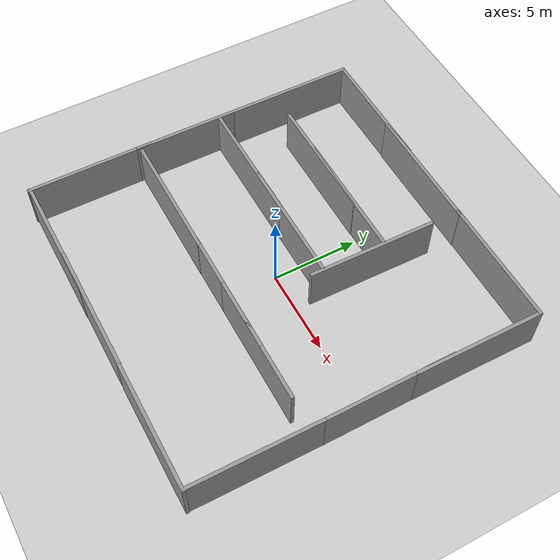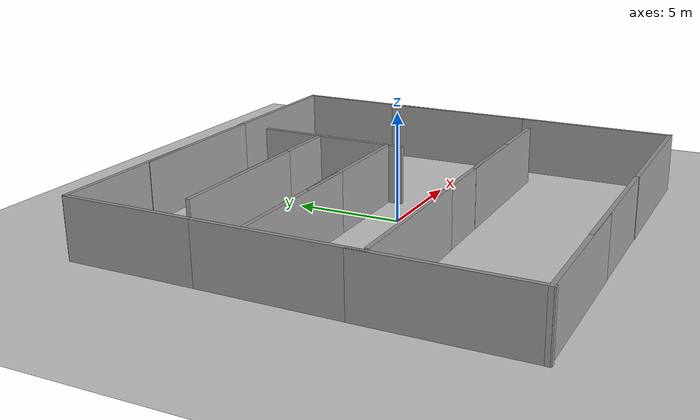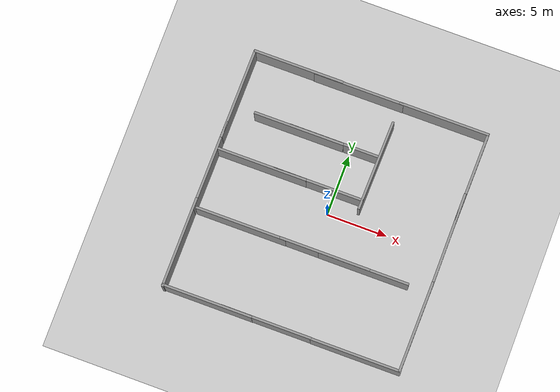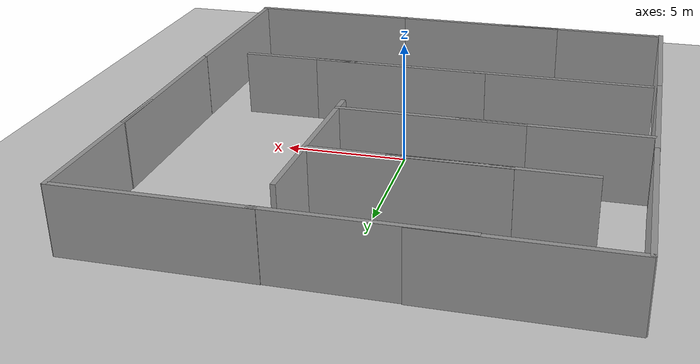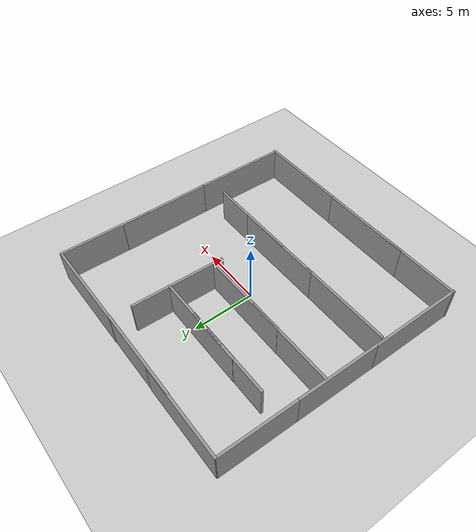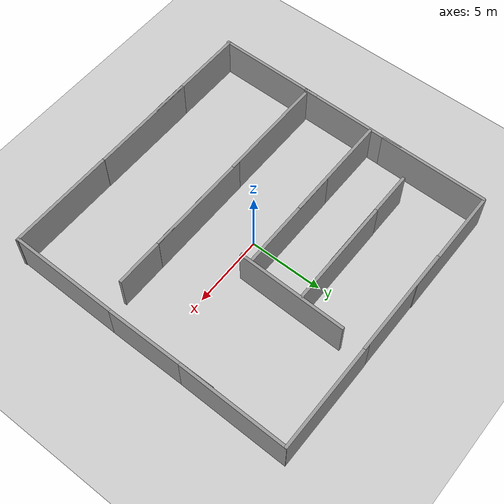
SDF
<sdf version="1.6">
 <world name="default">
  <light name="sun" type="directional">
   <pose>0 0 10 0 -0 0</pose>
   <diffuse>0.8 0.8 0.8 1</diffuse>
   <specular>0.2 0.2 0.2 1</specular>
   <attenuation>
    <range>1000</range>
    <constant>0.9</constant>
    <linear>0.01</linear>
    <quadratic>0.001</quadratic>
   </attenuation>
   <direction>-0.5 0.1 -0.9</direction>
  </light>
  <model name="ground_plane">
   <static>1</static>
   <link name="link">
    <collision name="collision">
     <geometry><plane><normal>0 0 1</normal><size>100 100</size></plane></geometry>
     <surface>
      <contact><collide_bitmask>65535</collide_bitmask></contact>
      <friction><ode><mu>100</mu><mu2>50</mu2></ode></friction>
     </surface>
    </collision>
    <visual name="visual">
     <cast_shadows>0</cast_shadows>
     <geometry><plane><normal>0 0 1</normal><size>100 100</size></plane></geometry>
     <material>
      <script><uri>file://media/materials/scripts/gazebo.material</uri><name>Gazebo/Grey</name></script>
     </material>
    </visual>
   </link>
  </model>
  <gravity>0 0 -9.8</gravity>
  <magnetic_field>6e-06 2.3e-05 -4.2e-05</magnetic_field>
  <atmosphere type="adiabatic"/>
  <physics name="default_physics" default="0" type="ode">
   <max_step_size>0.001</max_step_size>
   <real_time_factor>1</real_time_factor>
   <real_time_update_rate>1000</real_time_update_rate>
  </physics>
  <scene><ambient>0.4 0.4 0.4 1</ambient><background>0.7 0.7 0.7 1</background><shadows>1</shadows></scene>
  <spherical_coordinates>
   <surface_model>EARTH_WGS84</surface_model>
   <latitude_deg>0</latitude_deg>
   <longitude_deg>0</longitude_deg>
   <elevation>0</elevation>
   <heading_deg>0</heading_deg>
  </spherical_coordinates>
  <model name="grey_wall">
   <static>1</static>
   <link name="link">
    <pose>0 0 1.4 0 -0 0</pose>
    <collision name="collision"><geometry><box><size>7.5 0.2 2.8</size></box></geometry></collision>
    <visual name="visual">
     <cast_shadows>0</cast_shadows>
     <geometry><box><size>7.5 0.2 2.8</size></box></geometry>
     <material>
      <script>
       <uri>model://grey_wall/materials/scripts</uri>
       <uri>model://grey_wall/materials/textures</uri>
       <name>vrc/grey_wall</name>
      </script>
     </material>
    </visual>
   </link>
   <pose>6.02196 -10.0229 0 0 -0 0</pose>
  </model>
  <model name="grey_wall_0">
   <static>1</static>
   <link name="link">
    <pose>0 0 1.4 0 -0 0</pose>
    <collision name="collision"><geometry><box><size>7.5 0.2 2.8</size></box></geometry></collision>
    <visual name="visual">
     <cast_shadows>0</cast_shadows>
     <geometry><box><size>7.5 0.2 2.8</size></box></geometry>
     <material>
      <script>
       <uri>model://grey_wall/materials/scripts</uri>
       <uri>model://grey_wall/materials/textures</uri>
       <name>vrc/grey_wall</name>
      </script>
     </material>
    </visual>
   </link>
   <pose>-1.41071 -10.0047 0 0 -0 0</pose>
  </model>
  <model name="grey_wall_1">
   <static>1</static>
   <link name="link">
    <pose>0 0 1.4 0 -0 0</pose>
    <collision name="collision"><geometry><box><size>7.5 0.2 2.8</size></box></geometry></collision>
    <visual name="visual">
     <cast_shadows>0</cast_shadows>
     <geometry><box><size>7.5 0.2 2.8</size></box></geometry>
     <material>
      <script>
       <uri>model://grey_wall/materials/scripts</uri>
       <uri>model://grey_wall/materials/textures</uri>
       <name>vrc/grey_wall</name>
      </script>
     </material>
    </visual>
   </link>
   <pose>-6.33108 -10.0193 0 0 -0 0</pose>
  </model>
  <model name="grey_wall_clone">
   <static>1</static>
   <link name="link">
    <pose>0 0 1.4 0 -0 0</pose>
    <collision name="collision"><geometry><box><size>7.5 0.2 2.8</size></box></geometry></collision>
    <visual name="visual">
     <cast_shadows>0</cast_shadows>
     <geometry><box><size>7.5 0.2 2.8</size></box></geometry>
     <material>
      <script>
       <uri>model://grey_wall/materials/scripts</uri>
       <uri>model://grey_wall/materials/textures</uri>
       <name>vrc/grey_wall</name>
      </script>
     </material>
    </visual>
   </link>
   <pose>9.67688 -6.30598 0 0 0 -1.58292</pose>
  </model>
  <model name="grey_wall_2">
   <static>1</static>
   <link name="link">
    <pose>0 0 1.4 0 -0 0</pose>
    <collision name="collision"><geometry><box><size>7.5 0.2 2.8</size></box></geometry></collision>
    <visual name="visual">
     <cast_shadows>0</cast_shadows>
     <geometry><box><size>7.5 0.2 2.8</size></box></geometry>
     <material>
      <script>
       <uri>model://grey_wall/materials/scripts</uri>
       <uri>model://grey_wall/materials/textures</uri>
       <name>vrc/grey_wall</name>
      </script>
     </material>
    </visual>
   </link>
   <pose>9.73015 1.12334 0 0 -0 1.57</pose>
  </model>
  <model name="grey_wall_3">
   <static>1</static>
   <link name="link">
    <pose>0 0 1.4 0 -0 0</pose>
    <collision name="collision"><geometry><box><size>7.5 0.2 2.8</size></box></geometry></collision>
    <visual name="visual">
     <cast_shadows>0</cast_shadows>
     <geometry><box><size>7.5 0.2 2.8</size></box></geometry>
     <material>
      <script>
       <uri>model://grey_wall/materials/scripts</uri>
       <uri>model://grey_wall/materials/textures</uri>
       <name>vrc/grey_wall</name>
      </script>
     </material>
    </visual>
   </link>
   <pose>9.78553 6.29257 0 0 0 -1.58431</pose>
  </model>
  <model name="grey_wall_4">
   <static>1</static>
   <link name="link">
    <pose>0 0 1.4 0 -0 0</pose>
    <collision name="collision"><geometry><box><size>7.5 0.2 2.8</size></box></geometry></collision>
    <visual name="visual">
     <cast_shadows>0</cast_shadows>
     <geometry><box><size>7.5 0.2 2.8</size></box></geometry>
     <material>
      <script>
       <uri>model://grey_wall/materials/scripts</uri>
       <uri>model://grey_wall/materials/textures</uri>
       <name>vrc/grey_wall</name>
      </script>
     </material>
    </visual>
   </link>
   <pose>6.16428 9.94717 0 0 -0 0</pose>
  </model>
  <model name="grey_wall_5">
   <static>1</static>
   <link name="link">
    <pose>0 0 1.4 0 -0 0</pose>
    <collision name="collision"><geometry><box><size>7.5 0.2 2.8</size></box></geometry></collision>
    <visual name="visual">
     <cast_shadows>0</cast_shadows>
     <geometry><box><size>7.5 0.2 2.8</size></box></geometry>
     <material>
      <script>
       <uri>model://grey_wall/materials/scripts</uri>
       <uri>model://grey_wall/materials/textures</uri>
       <name>vrc/grey_wall</name>
      </script>
     </material>
    </visual>
   </link>
   <pose>-0.979902 9.92887 0 0 -0 0</pose>
  </model>
  <model name="grey_wall_6">
   <static>1</static>
   <link name="link">
    <pose>0 0 1.4 0 -0 0</pose>
    <collision name="collision"><geometry><box><size>7.5 0.2 2.8</size></box></geometry></collision>
    <visual name="visual">
     <cast_shadows>0</cast_shadows>
     <geometry><box><size>7.5 0.2 2.8</size></box></geometry>
     <material>
      <script>
       <uri>model://grey_wall/materials/scripts</uri>
       <uri>model://grey_wall/materials/textures</uri>
       <name>vrc/grey_wall</name>
      </script>
     </material>
    </visual>
   </link>
   <pose>-6.07365 9.96168 0 0 -0 0</pose>
  </model>
  <model name="grey_wall_7">
   <static>1</static>
   <link name="link">
    <pose>0 0 1.4 0 -0 0</pose>
    <collision name="collision"><geometry><box><size>7.5 0.2 2.8</size></box></geometry></collision>
    <visual name="visual">
     <cast_shadows>0</cast_shadows>
     <geometry><box><size>7.5 0.2 2.8</size></box></geometry>
     <material>
      <script>
       <uri>model://grey_wall/materials/scripts</uri>
       <uri>model://grey_wall/materials/textures</uri>
       <name>vrc/grey_wall</name>
      </script>
     </material>
    </visual>
   </link>
   <pose>-9.94638 -6.43274 0 0 0 -1.57732</pose>
  </model>
  <model name="grey_wall_8">
   <static>1</static>
   <link name="link">
    <pose>0 0 1.4 0 -0 0</pose>
    <collision name="collision"><geometry><box><size>7.5 0.2 2.8</size></box></geometry></collision>
    <visual name="visual">
     <cast_shadows>0</cast_shadows>
     <geometry><box><size>7.5 0.2 2.8</size></box></geometry>
     <material>
      <script>
       <uri>model://grey_wall/materials/scripts</uri>
       <uri>model://grey_wall/materials/textures</uri>
       <name>vrc/grey_wall</name>
      </script>
     </material>
    </visual>
   </link>
   <pose>-9.87993 0.109983 0 0 0 -1.58239</pose>
  </model>
  <model name="grey_wall_9">
   <static>1</static>
   <link name="link">
    <pose>0 0 1.4 0 -0 0</pose>
    <collision name="collision"><geometry><box><size>7.5 0.2 2.8</size></box></geometry></collision>
    <visual name="visual">
     <cast_shadows>0</cast_shadows>
     <geometry><box><size>7.5 0.2 2.8</size></box></geometry>
     <material>
      <script>
       <uri>model://grey_wall/materials/scripts</uri>
       <uri>model://grey_wall/materials/textures</uri>
       <name>vrc/grey_wall</name>
      </script>
     </material>
    </visual>
   </link>
   <pose>-9.80609 6.25505 0 0 0 -1.58111</pose>
  </model>
  <model name="grey_wall_10">
   <static>1</static>
   <link name="link">
    <pose>0 0 1.4 0 -0 0</pose>
    <collision name="collision"><geometry><box><size>7.5 0.2 2.8</size></box></geometry></collision>
    <visual name="visual">
     <cast_shadows>0</cast_shadows>
     <geometry><box><size>7.5 0.2 2.8</size></box></geometry>
     <material>
      <script>
       <uri>model://grey_wall/materials/scripts</uri>
       <uri>model://grey_wall/materials/textures</uri>
       <name>vrc/grey_wall</name>
      </script>
     </material>
    </visual>
   </link>
   <pose>-4.33912 5.2747 0 0 -0 0</pose>
  </model>
  <model name="grey_wall_11">
   <static>1</static>
   <link name="link">
    <pose>0 0 1.4 0 -0 0</pose>
    <collision name="collision"><geometry><box><size>7.5 0.2 2.8</size></box></geometry></collision>
    <visual name="visual">
     <cast_shadows>0</cast_shadows>
     <geometry><box><size>7.5 0.2 2.8</size></box></geometry>
     <material>
      <script>
       <uri>model://grey_wall/materials/scripts</uri>
       <uri>model://grey_wall/materials/textures</uri>
       <name>vrc/grey_wall</name>
      </script>
     </material>
    </visual>
   </link>
   <pose>-1.37862 5.2935 0 0 -0 0</pose>
  </model>
  <model name="grey_wall_12">
   <static>1</static>
   <link name="link">
    <pose>0 0 1.4 0 -0 0</pose>
    <collision name="collision"><geometry><box><size>7.5 0.2 2.8</size></box></geometry></collision>
    <visual name="visual">
     <cast_shadows>0</cast_shadows>
     <geometry><box><size>7.5 0.2 2.8</size></box></geometry>
     <material>
      <script>
       <uri>model://grey_wall/materials/scripts</uri>
       <uri>model://grey_wall/materials/textures</uri>
       <name>vrc/grey_wall</name>
      </script>
     </material>
    </visual>
   </link>
   <pose>-6.09802 1.59321 0 0 -0 0</pose>
  </model>
  <model name="grey_wall_13">
   <static>1</static>
   <link name="link">
    <pose>0 0 1.4 0 -0 0</pose>
    <collision name="collision"><geometry><box><size>7.5 0.2 2.8</size></box></geometry></collision>
    <visual name="visual">
     <cast_shadows>0</cast_shadows>
     <geometry><box><size>7.5 0.2 2.8</size></box></geometry>
     <material>
      <script>
       <uri>model://grey_wall/materials/scripts</uri>
       <uri>model://grey_wall/materials/textures</uri>
       <name>vrc/grey_wall</name>
      </script>
     </material>
    </visual>
   </link>
   <pose>-1.35287 1.60427 0 0 -0 0</pose>
  </model>
  <model name="grey_wall_14">
   <static>1</static>
   <link name="link">
    <pose>0 0 1.4 0 -0 0</pose>
    <collision name="collision"><geometry><box><size>7.5 0.2 2.8</size></box></geometry></collision>
    <visual name="visual">
     <cast_shadows>0</cast_shadows>
     <geometry><box><size>7.5 0.2 2.8</size></box></geometry>
     <material>
      <script>
       <uri>model://grey_wall/materials/scripts</uri>
       <uri>model://grey_wall/materials/textures</uri>
       <name>vrc/grey_wall</name>
      </script>
     </material>
    </visual>
   </link>
   <pose>2.3826 4.58144 0 0 -0 1.54671</pose>
  </model>
  <model name="grey_wall_15">
   <static>1</static>
   <link name="link">
    <pose>0 0 1.4 0 -0 0</pose>
    <collision name="collision"><geometry><box><size>7.5 0.2 2.8</size></box></geometry></collision>
    <visual name="visual">
     <cast_shadows>0</cast_shadows>
     <geometry><box><size>7.5 0.2 2.8</size></box></geometry>
     <material>
      <script>
       <uri>model://grey_wall/materials/scripts</uri>
       <uri>model://grey_wall/materials/textures</uri>
       <name>vrc/grey_wall</name>
      </script>
     </material>
    </visual>
   </link>
   <pose>-5.96056 -3.4123 0 0 -0 0</pose>
  </model>
  <model name="grey_wall_16">
   <static>1</static>
   <link name="link">
    <pose>0 0 1.4 0 -0 0</pose>
    <collision name="collision"><geometry><box><size>7.5 0.2 2.8</size></box></geometry></collision>
    <visual name="visual">
     <cast_shadows>0</cast_shadows>
     <geometry><box><size>7.5 0.2 2.8</size></box></geometry>
     <material>
      <script>
       <uri>model://grey_wall/materials/scripts</uri>
       <uri>model://grey_wall/materials/textures</uri>
       <name>vrc/grey_wall</name>
      </script>
     </material>
    </visual>
   </link>
   <pose>1.0253 -3.39943 0 0 -0 0</pose>
  </model>
  <model name="grey_wall_17">
   <static>1</static>
   <link name="link">
    <pose>0 0 1.4 0 -0 0</pose>
    <collision name="collision"><geometry><box><size>7.5 0.2 2.8</size></box></geometry></collision>
    <visual name="visual">
     <cast_shadows>0</cast_shadows>
     <geometry><box><size>7.5 0.2 2.8</size></box></geometry>
     <material>
      <script>
       <uri>model://grey_wall/materials/scripts</uri>
       <uri>model://grey_wall/materials/textures</uri>
       <name>vrc/grey_wall</name>
      </script>
     </material>
    </visual>
   </link>
   <pose>4.27328 -3.40414 0 0 -0 0</pose>
  </model>
 </world>
</sdf>
